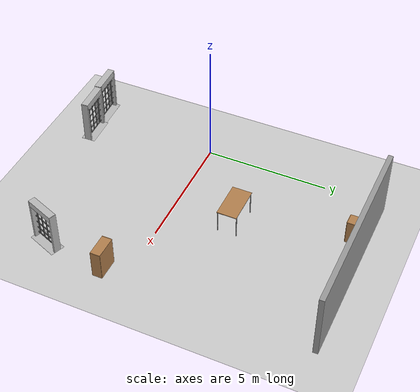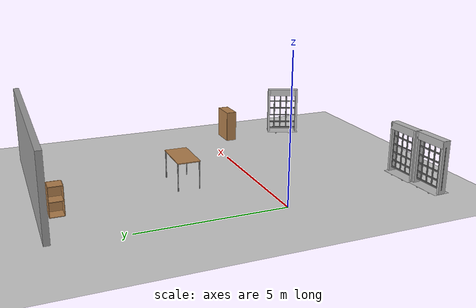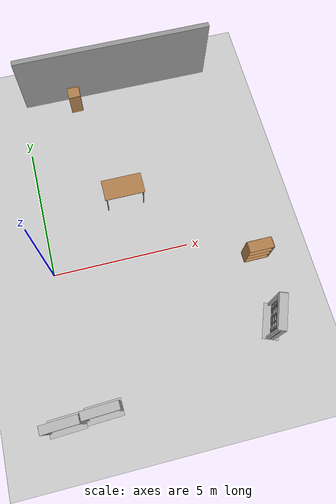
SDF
<sdf version="1.6">
 <world name="default">
  <light name="sun" type="directional">
   <pose>0 0 10 0 -0 0</pose>
   <diffuse>0.8 0.8 0.8 1</diffuse>
   <specular>0.2 0.2 0.2 1</specular>
   <attenuation>
    <range>1000</range>
    <constant>0.9</constant>
    <linear>0.01</linear>
    <quadratic>0.001</quadratic>
   </attenuation>
   <direction>-0.5 0.1 -0.9</direction>
  </light>
  <model name="ground_plane">
   <static>1</static>
   <link name="link">
    <collision name="collision">
     <geometry><plane><normal>0 0 1</normal><size>100 100</size></plane></geometry>
     <surface><friction><ode><mu>100</mu><mu2>50</mu2></ode></friction></surface>
    </collision>
    <visual name="visual">
     <cast_shadows>0</cast_shadows>
     <geometry><plane><normal>0 0 1</normal><size>100 100</size></plane></geometry>
     <material>
      <script><uri>file://media/materials/scripts/gazebo.material</uri><name>Gazebo/Grey</name></script>
     </material>
    </visual>
   </link>
  </model>
  <gravity>0 0 -9.8</gravity>
  <magnetic_field>6e-06 2.3e-05 -4.2e-05</magnetic_field>
  <atmosphere type="adiabatic"/>
  <physics name="default_physics" default="0" type="ode">
   <max_step_size>0.001</max_step_size>
   <real_time_factor>1</real_time_factor>
   <real_time_update_rate>1000</real_time_update_rate>
  </physics>
  <scene><ambient>0.4 0.4 0.4 1</ambient><background>0.7 0.7 0.7 1</background><shadows>1</shadows></scene>
  <spherical_coordinates>
   <surface_model>EARTH_WGS84</surface_model>
   <latitude_deg>0</latitude_deg>
   <longitude_deg>0</longitude_deg>
   <elevation>0</elevation>
   <heading_deg>0</heading_deg>
  </spherical_coordinates>
  <model name="frc2016_portcullis">
   <link name="base">
    <inertial>
     <mass>50</mass>
     <pose>0 0 1.02941 0 -0 0</pose>
     <inertia><ixx>3.81711</ixx><ixy>0</ixy><ixz>0</ixz><iyy>4.87698</iyy><iyz>0</iyz><izz>1.6283</izz></inertia>
    </inertial>
    <visual name="platform">
     <pose>0 0 0.07284 0 -0 0</pose>
     <geometry><box><size>1.27 0.5842 0.003175</size></box></geometry>
    </visual>
    <collision name="platform">
     <pose>0 0 0.07284 0 -0 0</pose>
     <geometry><box><size>1.27 0.5842 0.003175</size></box></geometry>
    </collision>
    <visual name="left_column">
     <pose>0.59284 0 0.99042 0 -0 0</pose>
     <geometry><box><size>0.08375 0.28575 1.83198</size></box></geometry>
    </visual>
    <collision name="left_column">
     <pose>0.59284 0 0.99042 0 -0 0</pose>
     <geometry><box><size>0.08375 0.28575 1.83198</size></box></geometry>
    </collision>
    <visual name="right_column">
     <pose>-0.57759 0 0.99042 0 -0 0</pose>
     <geometry><box><size>0.08375 0.28575 1.83198</size></box></geometry>
    </visual>
    <collision name="right_column">
     <pose>-0.57759 0 0.99042 0 -0 0</pose>
     <geometry><box><size>0.08375 0.28575 1.83198</size></box></geometry>
    </collision>
    <visual name="top">
     <pose>-0.00034 0 1.77722 0 -0 0</pose>
     <geometry><box><size>1.22962 0.28575 0.26657</size></box></geometry>
    </visual>
    <collision name="top">
     <pose>-0.00034 0 1.77722 0 -0 0</pose>
     <geometry><box><size>1.22962 0.28575 0.26657</size></box></geometry>
    </collision>
    <visual name="castor1">
     <pose>-0.45651 -0.16234 0.03272 0 -0 0</pose>
     <geometry><sphere><radius>0.03272</radius></sphere></geometry>
    </visual>
    <collision name="castor1">
     <pose>-0.45651 -0.16234 0.03272 0 -0 0</pose>
     <geometry><sphere><radius>0.03272</radius></sphere></geometry>
    </collision>
    <visual name="castor2">
     <pose>-0.27883 0.21836 0.03272 0 -0 0</pose>
     <geometry><sphere><radius>0.03272</radius></sphere></geometry>
    </visual>
    <collision name="castor2">
     <pose>-0.27883 0.21836 0.03272 0 -0 0</pose>
     <geometry><sphere><radius>0.03272</radius></sphere></geometry>
    </collision>
    <visual name="castor3">
     <pose>0.28083 0.21906 0.03272 0 -0 0</pose>
     <geometry><sphere><radius>0.03272</radius></sphere></geometry>
    </visual>
    <collision name="castor3">
     <pose>0.28083 0.21906 0.03272 0 -0 0</pose>
     <geometry><sphere><radius>0.03272</radius></sphere></geometry>
    </collision>
    <visual name="castor4">
     <pose>0.45871 -0.16186 0.03272 0 -0 0</pose>
     <geometry><sphere><radius>0.03272</radius></sphere></geometry>
    </visual>
    <collision name="castor4">
     <pose>0.45871 -0.16186 0.03272 0 -0 0</pose>
     <geometry><sphere><radius>0.03272</radius></sphere></geometry>
    </collision>
   </link>
   <link name="gate">
    <pose>-0.0287 0.02885 0.93327 0 -0 0</pose>
    <inertial>
     <mass>2</mass>
     <inertia><ixx>3.81711</ixx><ixy>0</ixy><ixz>0</ixz><iyy>4.87698</iyy><iyz>0</iyz><izz>1.6283</izz></inertia>
    </inertial>
    <collision name="collision"><geometry><box><size>1.1938 0.02496 1.45732</size></box></geometry></collision>
    <visual name="horz_1">
     <pose>0 0 -0.70326 0 -0 0</pose>
     <geometry><box><size>1.1938 0.02496 0.0508</size></box></geometry>
     <material><ambient>0.4 0.4 0.4 1</ambient><diffuse>0.4 0.4 0.4 1</diffuse></material>
    </visual>
    <visual name="horz_2">
     <pose>0 0 -0.44926 0 -0 0</pose>
     <geometry><box><size>1.1938 0.02496 0.0508</size></box></geometry>
     <material><ambient>0.4 0.4 0.4 1</ambient><diffuse>0.4 0.4 0.4 1</diffuse></material>
    </visual>
    <visual name="horz_3">
     <pose>0 0 -0.14517 0 -0 0</pose>
     <geometry><box><size>1.1938 0.02496 0.0508</size></box></geometry>
     <material><ambient>0.4 0.4 0.4 1</ambient><diffuse>0.4 0.4 0.4 1</diffuse></material>
    </visual>
    <visual name="horz_4">
     <pose>0 0 0.16034 0 -0 0</pose>
     <geometry><box><size>1.1938 0.02496 0.0508</size></box></geometry>
     <material><ambient>0.4 0.4 0.4 1</ambient><diffuse>0.4 0.4 0.4 1</diffuse></material>
    </visual>
    <visual name="horz_5">
     <pose>0 0 0.46514 0 -0 0</pose>
     <geometry><box><size>1.1938 0.02496 0.0508</size></box></geometry>
     <material><ambient>0.4 0.4 0.4 1</ambient><diffuse>0.4 0.4 0.4 1</diffuse></material>
    </visual>
    <visual name="horz_6">
     <pose>0 0 0.72994 0 -0 0</pose>
     <geometry><box><size>1.1938 0.02496 0.0508</size></box></geometry>
     <material><ambient>0.4 0.4 0.4 1</ambient><diffuse>0.4 0.4 0.4 1</diffuse></material>
    </visual>
    <visual name="vert_1">
     <pose>-0.58448 0 0 0 -0 0</pose>
     <geometry><box><size>0.02495 0.02496 1.45732</size></box></geometry>
     <material><ambient>0.4 0.4 0.4 1</ambient><diffuse>0.4 0.4 0.4 1</diffuse></material>
    </visual>
    <visual name="vert_2">
     <pose>-0.38128 0 0 0 -0 0</pose>
     <geometry><box><size>0.0508 0.02496 1.45732</size></box></geometry>
     <material><ambient>0.4 0.4 0.4 1</ambient><diffuse>0.4 0.4 0.4 1</diffuse></material>
    </visual>
    <visual name="vert_3">
     <pose>-0.12728 0 0 0 -0 0</pose>
     <geometry><box><size>0.0508 0.02496 1.45732</size></box></geometry>
     <material><ambient>0.4 0.4 0.4 1</ambient><diffuse>0.4 0.4 0.4 1</diffuse></material>
    </visual>
    <visual name="vert_4">
     <pose>0.12672 0 0 0 -0 0</pose>
     <geometry><box><size>0.0508 0.02496 1.45732</size></box></geometry>
     <material><ambient>0.4 0.4 0.4 1</ambient><diffuse>0.4 0.4 0.4 1</diffuse></material>
    </visual>
    <visual name="vert_5">
     <pose>0.38072 0 0 0 -0 0</pose>
     <geometry><box><size>0.0508 0.02496 1.45732</size></box></geometry>
     <material><ambient>0.4 0.4 0.4 1</ambient><diffuse>0.4 0.4 0.4 1</diffuse></material>
    </visual>
    <visual name="vert_6">
     <pose>0.58392 0 0 0 -0 0</pose>
     <geometry><box><size>0.02495 0.02496 1.45732</size></box></geometry>
     <material><ambient>0.4 0.4 0.4 1</ambient><diffuse>0.4 0.4 0.4 1</diffuse></material>
    </visual>
   </link>
   <joint name="joint" type="prismatic">
    <parent>base</parent>
    <child>gate</child>
    <axis>
     <xyz>0 0 1</xyz>
     <limit><lower>0</lower><upper>1</upper></limit>
     <use_parent_model_frame>0</use_parent_model_frame>
     <dynamics><spring_reference>0</spring_reference><spring_stiffness>0</spring_stiffness></dynamics>
    </axis>
   </joint>
   <pose>-0.461773 -5.08463 0 -1e-06 -1e-06 0.039389</pose>
  </model>
  <model name="frc2016_portcullis_clone">
   <link name="base">
    <inertial>
     <mass>50</mass>
     <pose>0 0 1.02941 0 -0 0</pose>
     <inertia><ixx>3.81711</ixx><ixy>0</ixy><ixz>0</ixz><iyy>4.87698</iyy><iyz>0</iyz><izz>1.6283</izz></inertia>
    </inertial>
    <visual name="platform">
     <pose>0 0 0.07284 0 -0 0</pose>
     <geometry><box><size>1.27 0.5842 0.003175</size></box></geometry>
    </visual>
    <collision name="platform">
     <pose>0 0 0.07284 0 -0 0</pose>
     <geometry><box><size>1.27 0.5842 0.003175</size></box></geometry>
    </collision>
    <visual name="left_column">
     <pose>0.59284 0 0.99042 0 -0 0</pose>
     <geometry><box><size>0.08375 0.28575 1.83198</size></box></geometry>
    </visual>
    <collision name="left_column">
     <pose>0.59284 0 0.99042 0 -0 0</pose>
     <geometry><box><size>0.08375 0.28575 1.83198</size></box></geometry>
    </collision>
    <visual name="right_column">
     <pose>-0.57759 0 0.99042 0 -0 0</pose>
     <geometry><box><size>0.08375 0.28575 1.83198</size></box></geometry>
    </visual>
    <collision name="right_column">
     <pose>-0.57759 0 0.99042 0 -0 0</pose>
     <geometry><box><size>0.08375 0.28575 1.83198</size></box></geometry>
    </collision>
    <visual name="top">
     <pose>-0.00034 0 1.77722 0 -0 0</pose>
     <geometry><box><size>1.22962 0.28575 0.26657</size></box></geometry>
    </visual>
    <collision name="top">
     <pose>-0.00034 0 1.77722 0 -0 0</pose>
     <geometry><box><size>1.22962 0.28575 0.26657</size></box></geometry>
    </collision>
    <visual name="castor1">
     <pose>-0.45651 -0.16234 0.03272 0 -0 0</pose>
     <geometry><sphere><radius>0.03272</radius></sphere></geometry>
    </visual>
    <collision name="castor1">
     <pose>-0.45651 -0.16234 0.03272 0 -0 0</pose>
     <geometry><sphere><radius>0.03272</radius></sphere></geometry>
    </collision>
    <visual name="castor2">
     <pose>-0.27883 0.21836 0.03272 0 -0 0</pose>
     <geometry><sphere><radius>0.03272</radius></sphere></geometry>
    </visual>
    <collision name="castor2">
     <pose>-0.27883 0.21836 0.03272 0 -0 0</pose>
     <geometry><sphere><radius>0.03272</radius></sphere></geometry>
    </collision>
    <visual name="castor3">
     <pose>0.28083 0.21906 0.03272 0 -0 0</pose>
     <geometry><sphere><radius>0.03272</radius></sphere></geometry>
    </visual>
    <collision name="castor3">
     <pose>0.28083 0.21906 0.03272 0 -0 0</pose>
     <geometry><sphere><radius>0.03272</radius></sphere></geometry>
    </collision>
    <visual name="castor4">
     <pose>0.45871 -0.16186 0.03272 0 -0 0</pose>
     <geometry><sphere><radius>0.03272</radius></sphere></geometry>
    </visual>
    <collision name="castor4">
     <pose>0.45871 -0.16186 0.03272 0 -0 0</pose>
     <geometry><sphere><radius>0.03272</radius></sphere></geometry>
    </collision>
   </link>
   <link name="gate">
    <pose>-0.0287 0.02885 0.93327 0 -0 0</pose>
    <inertial>
     <mass>2</mass>
     <inertia><ixx>3.81711</ixx><ixy>0</ixy><ixz>0</ixz><iyy>4.87698</iyy><iyz>0</iyz><izz>1.6283</izz></inertia>
    </inertial>
    <collision name="collision"><geometry><box><size>1.1938 0.02496 1.45732</size></box></geometry></collision>
    <visual name="horz_1">
     <pose>0 0 -0.70326 0 -0 0</pose>
     <geometry><box><size>1.1938 0.02496 0.0508</size></box></geometry>
     <material><ambient>0.4 0.4 0.4 1</ambient><diffuse>0.4 0.4 0.4 1</diffuse></material>
    </visual>
    <visual name="horz_2">
     <pose>0 0 -0.44926 0 -0 0</pose>
     <geometry><box><size>1.1938 0.02496 0.0508</size></box></geometry>
     <material><ambient>0.4 0.4 0.4 1</ambient><diffuse>0.4 0.4 0.4 1</diffuse></material>
    </visual>
    <visual name="horz_3">
     <pose>0 0 -0.14517 0 -0 0</pose>
     <geometry><box><size>1.1938 0.02496 0.0508</size></box></geometry>
     <material><ambient>0.4 0.4 0.4 1</ambient><diffuse>0.4 0.4 0.4 1</diffuse></material>
    </visual>
    <visual name="horz_4">
     <pose>0 0 0.16034 0 -0 0</pose>
     <geometry><box><size>1.1938 0.02496 0.0508</size></box></geometry>
     <material><ambient>0.4 0.4 0.4 1</ambient><diffuse>0.4 0.4 0.4 1</diffuse></material>
    </visual>
    <visual name="horz_5">
     <pose>0 0 0.46514 0 -0 0</pose>
     <geometry><box><size>1.1938 0.02496 0.0508</size></box></geometry>
     <material><ambient>0.4 0.4 0.4 1</ambient><diffuse>0.4 0.4 0.4 1</diffuse></material>
    </visual>
    <visual name="horz_6">
     <pose>0 0 0.72994 0 -0 0</pose>
     <geometry><box><size>1.1938 0.02496 0.0508</size></box></geometry>
     <material><ambient>0.4 0.4 0.4 1</ambient><diffuse>0.4 0.4 0.4 1</diffuse></material>
    </visual>
    <visual name="vert_1">
     <pose>-0.58448 0 0 0 -0 0</pose>
     <geometry><box><size>0.02495 0.02496 1.45732</size></box></geometry>
     <material><ambient>0.4 0.4 0.4 1</ambient><diffuse>0.4 0.4 0.4 1</diffuse></material>
    </visual>
    <visual name="vert_2">
     <pose>-0.38128 0 0 0 -0 0</pose>
     <geometry><box><size>0.0508 0.02496 1.45732</size></box></geometry>
     <material><ambient>0.4 0.4 0.4 1</ambient><diffuse>0.4 0.4 0.4 1</diffuse></material>
    </visual>
    <visual name="vert_3">
     <pose>-0.12728 0 0 0 -0 0</pose>
     <geometry><box><size>0.0508 0.02496 1.45732</size></box></geometry>
     <material><ambient>0.4 0.4 0.4 1</ambient><diffuse>0.4 0.4 0.4 1</diffuse></material>
    </visual>
    <visual name="vert_4">
     <pose>0.12672 0 0 0 -0 0</pose>
     <geometry><box><size>0.0508 0.02496 1.45732</size></box></geometry>
     <material><ambient>0.4 0.4 0.4 1</ambient><diffuse>0.4 0.4 0.4 1</diffuse></material>
    </visual>
    <visual name="vert_5">
     <pose>0.38072 0 0 0 -0 0</pose>
     <geometry><box><size>0.0508 0.02496 1.45732</size></box></geometry>
     <material><ambient>0.4 0.4 0.4 1</ambient><diffuse>0.4 0.4 0.4 1</diffuse></material>
    </visual>
    <visual name="vert_6">
     <pose>0.58392 0 0 0 -0 0</pose>
     <geometry><box><size>0.02495 0.02496 1.45732</size></box></geometry>
     <material><ambient>0.4 0.4 0.4 1</ambient><diffuse>0.4 0.4 0.4 1</diffuse></material>
    </visual>
   </link>
   <joint name="joint" type="prismatic">
    <parent>base</parent>
    <child>gate</child>
    <axis>
     <xyz>0 0 1</xyz>
     <limit><lower>0</lower><upper>1</upper></limit>
     <use_parent_model_frame>0</use_parent_model_frame>
     <dynamics><spring_reference>0</spring_reference><spring_stiffness>0</spring_stiffness></dynamics>
    </axis>
   </joint>
   <pose>0.805179 -4.98224 1e-06 0 2e-06 0.039394</pose>
  </model>
  <model name="frc2016_portcullis_clone_clone">
   <link name="base">
    <inertial>
     <mass>50</mass>
     <pose>0 0 1.02941 0 -0 0</pose>
     <inertia><ixx>3.81711</ixx><ixy>0</ixy><ixz>0</ixz><iyy>4.87698</iyy><iyz>0</iyz><izz>1.6283</izz></inertia>
    </inertial>
    <visual name="platform">
     <pose>0 0 0.07284 0 -0 0</pose>
     <geometry><box><size>1.27 0.5842 0.003175</size></box></geometry>
    </visual>
    <collision name="platform">
     <pose>0 0 0.07284 0 -0 0</pose>
     <geometry><box><size>1.27 0.5842 0.003175</size></box></geometry>
    </collision>
    <visual name="left_column">
     <pose>0.59284 0 0.99042 0 -0 0</pose>
     <geometry><box><size>0.08375 0.28575 1.83198</size></box></geometry>
    </visual>
    <collision name="left_column">
     <pose>0.59284 0 0.99042 0 -0 0</pose>
     <geometry><box><size>0.08375 0.28575 1.83198</size></box></geometry>
    </collision>
    <visual name="right_column">
     <pose>-0.57759 0 0.99042 0 -0 0</pose>
     <geometry><box><size>0.08375 0.28575 1.83198</size></box></geometry>
    </visual>
    <collision name="right_column">
     <pose>-0.57759 0 0.99042 0 -0 0</pose>
     <geometry><box><size>0.08375 0.28575 1.83198</size></box></geometry>
    </collision>
    <visual name="top">
     <pose>-0.00034 0 1.77722 0 -0 0</pose>
     <geometry><box><size>1.22962 0.28575 0.26657</size></box></geometry>
    </visual>
    <collision name="top">
     <pose>-0.00034 0 1.77722 0 -0 0</pose>
     <geometry><box><size>1.22962 0.28575 0.26657</size></box></geometry>
    </collision>
    <visual name="castor1">
     <pose>-0.45651 -0.16234 0.03272 0 -0 0</pose>
     <geometry><sphere><radius>0.03272</radius></sphere></geometry>
    </visual>
    <collision name="castor1">
     <pose>-0.45651 -0.16234 0.03272 0 -0 0</pose>
     <geometry><sphere><radius>0.03272</radius></sphere></geometry>
    </collision>
    <visual name="castor2">
     <pose>-0.27883 0.21836 0.03272 0 -0 0</pose>
     <geometry><sphere><radius>0.03272</radius></sphere></geometry>
    </visual>
    <collision name="castor2">
     <pose>-0.27883 0.21836 0.03272 0 -0 0</pose>
     <geometry><sphere><radius>0.03272</radius></sphere></geometry>
    </collision>
    <visual name="castor3">
     <pose>0.28083 0.21906 0.03272 0 -0 0</pose>
     <geometry><sphere><radius>0.03272</radius></sphere></geometry>
    </visual>
    <collision name="castor3">
     <pose>0.28083 0.21906 0.03272 0 -0 0</pose>
     <geometry><sphere><radius>0.03272</radius></sphere></geometry>
    </collision>
    <visual name="castor4">
     <pose>0.45871 -0.16186 0.03272 0 -0 0</pose>
     <geometry><sphere><radius>0.03272</radius></sphere></geometry>
    </visual>
    <collision name="castor4">
     <pose>0.45871 -0.16186 0.03272 0 -0 0</pose>
     <geometry><sphere><radius>0.03272</radius></sphere></geometry>
    </collision>
   </link>
   <link name="gate">
    <pose>-0.0287 0.02885 0.93327 0 -0 0</pose>
    <inertial>
     <mass>2</mass>
     <inertia><ixx>3.81711</ixx><ixy>0</ixy><ixz>0</ixz><iyy>4.87698</iyy><iyz>0</iyz><izz>1.6283</izz></inertia>
    </inertial>
    <collision name="collision"><geometry><box><size>1.1938 0.02496 1.45732</size></box></geometry></collision>
    <visual name="horz_1">
     <pose>0 0 -0.70326 0 -0 0</pose>
     <geometry><box><size>1.1938 0.02496 0.0508</size></box></geometry>
     <material><ambient>0.4 0.4 0.4 1</ambient><diffuse>0.4 0.4 0.4 1</diffuse></material>
    </visual>
    <visual name="horz_2">
     <pose>0 0 -0.44926 0 -0 0</pose>
     <geometry><box><size>1.1938 0.02496 0.0508</size></box></geometry>
     <material><ambient>0.4 0.4 0.4 1</ambient><diffuse>0.4 0.4 0.4 1</diffuse></material>
    </visual>
    <visual name="horz_3">
     <pose>0 0 -0.14517 0 -0 0</pose>
     <geometry><box><size>1.1938 0.02496 0.0508</size></box></geometry>
     <material><ambient>0.4 0.4 0.4 1</ambient><diffuse>0.4 0.4 0.4 1</diffuse></material>
    </visual>
    <visual name="horz_4">
     <pose>0 0 0.16034 0 -0 0</pose>
     <geometry><box><size>1.1938 0.02496 0.0508</size></box></geometry>
     <material><ambient>0.4 0.4 0.4 1</ambient><diffuse>0.4 0.4 0.4 1</diffuse></material>
    </visual>
    <visual name="horz_5">
     <pose>0 0 0.46514 0 -0 0</pose>
     <geometry><box><size>1.1938 0.02496 0.0508</size></box></geometry>
     <material><ambient>0.4 0.4 0.4 1</ambient><diffuse>0.4 0.4 0.4 1</diffuse></material>
    </visual>
    <visual name="horz_6">
     <pose>0 0 0.72994 0 -0 0</pose>
     <geometry><box><size>1.1938 0.02496 0.0508</size></box></geometry>
     <material><ambient>0.4 0.4 0.4 1</ambient><diffuse>0.4 0.4 0.4 1</diffuse></material>
    </visual>
    <visual name="vert_1">
     <pose>-0.58448 0 0 0 -0 0</pose>
     <geometry><box><size>0.02495 0.02496 1.45732</size></box></geometry>
     <material><ambient>0.4 0.4 0.4 1</ambient><diffuse>0.4 0.4 0.4 1</diffuse></material>
    </visual>
    <visual name="vert_2">
     <pose>-0.38128 0 0 0 -0 0</pose>
     <geometry><box><size>0.0508 0.02496 1.45732</size></box></geometry>
     <material><ambient>0.4 0.4 0.4 1</ambient><diffuse>0.4 0.4 0.4 1</diffuse></material>
    </visual>
    <visual name="vert_3">
     <pose>-0.12728 0 0 0 -0 0</pose>
     <geometry><box><size>0.0508 0.02496 1.45732</size></box></geometry>
     <material><ambient>0.4 0.4 0.4 1</ambient><diffuse>0.4 0.4 0.4 1</diffuse></material>
    </visual>
    <visual name="vert_4">
     <pose>0.12672 0 0 0 -0 0</pose>
     <geometry><box><size>0.0508 0.02496 1.45732</size></box></geometry>
     <material><ambient>0.4 0.4 0.4 1</ambient><diffuse>0.4 0.4 0.4 1</diffuse></material>
    </visual>
    <visual name="vert_5">
     <pose>0.38072 0 0 0 -0 0</pose>
     <geometry><box><size>0.0508 0.02496 1.45732</size></box></geometry>
     <material><ambient>0.4 0.4 0.4 1</ambient><diffuse>0.4 0.4 0.4 1</diffuse></material>
    </visual>
    <visual name="vert_6">
     <pose>0.58392 0 0 0 -0 0</pose>
     <geometry><box><size>0.02495 0.02496 1.45732</size></box></geometry>
     <material><ambient>0.4 0.4 0.4 1</ambient><diffuse>0.4 0.4 0.4 1</diffuse></material>
    </visual>
   </link>
   <joint name="joint" type="prismatic">
    <parent>base</parent>
    <child>gate</child>
    <axis>
     <xyz>0 0 1</xyz>
     <limit><lower>0</lower><upper>1</upper></limit>
     <use_parent_model_frame>0</use_parent_model_frame>
     <dynamics><spring_reference>0</spring_reference><spring_stiffness>0</spring_stiffness></dynamics>
    </axis>
   </joint>
   <pose>7.13675 -3.44878 0 -1e-06 0 1.20305</pose>
  </model>
  <model name="table">
   <static>1</static>
   <link name="link">
    <collision name="surface">
     <pose>0 0 1 0 -0 0</pose>
     <geometry><box><size>1.5 0.8 0.03</size></box></geometry>
     <surface><friction><ode><mu>0.6</mu><mu2>0.6</mu2></ode></friction></surface>
    </collision>
    <visual name="visual1">
     <pose>0 0 1 0 -0 0</pose>
     <geometry><box><size>1.5 0.8 0.03</size></box></geometry>
     <material>
      <script><uri>file://media/materials/scripts/gazebo.material</uri><name>Gazebo/Wood</name></script>
     </material>
    </visual>
    <collision name="front_left_leg">
     <pose>0.68 0.38 0.5 0 -0 0</pose>
     <geometry><cylinder><radius>0.02</radius><length>1</length></cylinder></geometry>
    </collision>
    <visual name="front_left_leg">
     <pose>0.68 0.38 0.5 0 -0 0</pose>
     <geometry><cylinder><radius>0.02</radius><length>1</length></cylinder></geometry>
     <material>
      <script><uri>file://media/materials/scripts/gazebo.material</uri><name>Gazebo/Grey</name></script>
     </material>
    </visual>
    <collision name="front_right_leg">
     <pose>0.68 -0.38 0.5 0 -0 0</pose>
     <geometry><cylinder><radius>0.02</radius><length>1</length></cylinder></geometry>
    </collision>
    <visual name="front_right_leg">
     <pose>0.68 -0.38 0.5 0 -0 0</pose>
     <geometry><cylinder><radius>0.02</radius><length>1</length></cylinder></geometry>
     <material>
      <script><uri>file://media/materials/scripts/gazebo.material</uri><name>Gazebo/Grey</name></script>
     </material>
    </visual>
    <collision name="back_right_leg">
     <pose>-0.68 -0.38 0.5 0 -0 0</pose>
     <geometry><cylinder><radius>0.02</radius><length>1</length></cylinder></geometry>
    </collision>
    <visual name="back_right_leg">
     <pose>-0.68 -0.38 0.5 0 -0 0</pose>
     <geometry><cylinder><radius>0.02</radius><length>1</length></cylinder></geometry>
     <material>
      <script><uri>file://media/materials/scripts/gazebo.material</uri><name>Gazebo/Grey</name></script>
     </material>
    </visual>
    <collision name="back_left_leg">
     <pose>-0.68 0.38 0.5 0 -0 0</pose>
     <geometry><cylinder><radius>0.02</radius><length>1</length></cylinder></geometry>
    </collision>
    <visual name="back_left_leg">
     <pose>-0.68 0.38 0.5 0 -0 0</pose>
     <geometry><cylinder><radius>0.02</radius><length>1</length></cylinder></geometry>
     <material>
      <script><uri>file://media/materials/scripts/gazebo.material</uri><name>Gazebo/Grey</name></script>
     </material>
    </visual>
   </link>
   <pose>3.1618 2.44114 0 0 -0 0</pose>
  </model>
  <model name="grey_wall">
   <static>1</static>
   <link name="link">
    <pose>0 0 1.4 0 -0 0</pose>
    <collision name="collision"><geometry><box><size>7.5 0.2 2.8</size></box></geometry></collision>
    <visual name="visual">
     <cast_shadows>0</cast_shadows>
     <geometry><box><size>7.5 0.2 2.8</size></box></geometry>
     <material>
      <script>
       <uri>model://grey_wall/materials/scripts</uri>
       <uri>model://grey_wall/materials/textures</uri>
       <name>vrc/grey_wall</name>
      </script>
     </material>
    </visual>
   </link>
   <pose>3.91987 7.39129 0 0 -0 0</pose>
  </model>
  <model name="cabinet">
   <static>1</static>
   <link name="cabinet_bottom_plate">
    <inertial>
     <pose>0 0 -1 0 -0 0</pose>
     <inertia><ixx>2.05</ixx><ixy>0</ixy><ixz>0</ixz><iyy>2.05</iyy><iyz>0</iyz><izz>2.05</izz></inertia>
     <mass>25</mass>
    </inertial>
    <collision name="cabinet_bottom_plate_geom">
     <pose>0 0 0.01 0 -0 0</pose>
     <geometry><box><size>0.45 0.45 0.02</size></box></geometry>
    </collision>
    <visual name="cabinet_bottom_plate_geom_visual">
     <pose>0 0 0.01 0 -0 0</pose>
     <geometry><box><size>0.45 0.45 0.02</size></box></geometry>
     <material>
      <script><uri>file://media/materials/scripts/gazebo.material</uri><name>Gazebo/Wood</name></script>
     </material>
    </visual>
    <collision name="cabinet_bottom_plate_geom_cabinet_back_plate">
     <pose>0.235 0 0.51 0 -0 0</pose>
     <geometry><box><size>0.02 0.45 1.02</size></box></geometry>
    </collision>
    <visual name="cabinet_bottom_plate_geom_cabinet_back_plate_visual">
     <pose>0.235 0 0.51 0 -0 0</pose>
     <geometry><box><size>0.02 0.45 1.02</size></box></geometry>
     <material>
      <script><uri>file://media/materials/scripts/gazebo.material</uri><name>Gazebo/Wood</name></script>
     </material>
    </visual>
    <collision name="cabinet_bottom_plate_geom_cabinet_left_plate">
     <pose>0 0.235 0.51 0 -0 0</pose>
     <geometry><box><size>0.45 0.02 1.02</size></box></geometry>
    </collision>
    <visual name="cabinet_bottom_plate_geom_cabinet_left_plate_visual">
     <pose>0 0.235 0.51 0 -0 0</pose>
     <geometry><box><size>0.45 0.02 1.02</size></box></geometry>
     <material>
      <script><uri>file://media/materials/scripts/gazebo.material</uri><name>Gazebo/Wood</name></script>
     </material>
    </visual>
    <collision name="cabinet_bottom_plate_geom_cabinet_middle_plate">
     <pose>0 0 0.51 0 -0 0</pose>
     <geometry><box><size>0.45 0.45 0.02</size></box></geometry>
    </collision>
    <visual name="cabinet_bottom_plate_geom_cabinet_middle_plate_visual">
     <pose>0 0 0.51 0 -0 0</pose>
     <geometry><box><size>0.45 0.45 0.02</size></box></geometry>
     <material>
      <script><uri>file://media/materials/scripts/gazebo.material</uri><name>Gazebo/Wood</name></script>
     </material>
    </visual>
    <collision name="cabinet_bottom_plate_geom_cabinet_right_plate">
     <pose>0 -0.235 0.51 0 -0 0</pose>
     <geometry><box><size>0.45 0.02 1.02</size></box></geometry>
    </collision>
    <visual name="cabinet_bottom_plate_geom_cabinet_right_plate_visual">
     <pose>0 -0.235 0.51 0 -0 0</pose>
     <geometry><box><size>0.45 0.02 1.02</size></box></geometry>
     <material>
      <script><uri>file://media/materials/scripts/gazebo.material</uri><name>Gazebo/Wood</name></script>
     </material>
    </visual>
    <collision name="cabinet_bottom_plate_geom_cabinet_top_plate">
     <pose>0 0 1.01 0 -0 0</pose>
     <geometry><box><size>0.45 0.45 0.02</size></box></geometry>
    </collision>
    <visual name="cabinet_bottom_plate_geom_cabinet_top_plate_visual">
     <pose>0 0 1.01 0 -0 0</pose>
     <geometry><box><size>0.45 0.45 0.02</size></box></geometry>
     <material>
      <script><uri>file://media/materials/scripts/gazebo.material</uri><name>Gazebo/Wood</name></script>
     </material>
    </visual>
   </link>
   <pose>2.16002 6.86215 0 0 -0 0</pose>
  </model>
  <model name="bookshelf">
   <static>1</static>
   <link name="link">
    <inertial><mass>1</mass></inertial>
    <collision name="back">
     <pose>0 0.005 0.6 0 -0 0</pose>
     <geometry><box><size>0.9 0.01 1.2</size></box></geometry>
    </collision>
    <visual name="visual1">
     <pose>0 0.005 0.6 0 -0 0</pose>
     <geometry><box><size>0.9 0.01 1.2</size></box></geometry>
     <material>
      <script><uri>file://media/materials/scripts/gazebo.material</uri><name>Gazebo/Wood</name></script>
     </material>
    </visual>
    <collision name="left_side">
     <pose>0.45 -0.195 0.6 0 -0 0</pose>
     <geometry><box><size>0.02 0.4 1.2</size></box></geometry>
    </collision>
    <visual name="visual2">
     <pose>0.45 -0.195 0.6 0 -0 0</pose>
     <geometry><box><size>0.02 0.4 1.2</size></box></geometry>
     <material>
      <script><uri>file://media/materials/scripts/gazebo.material</uri><name>Gazebo/Wood</name></script>
     </material>
    </visual>
    <collision name="right_side">
     <pose>-0.45 -0.195 0.6 0 -0 0</pose>
     <geometry><box><size>0.02 0.4 1.2</size></box></geometry>
    </collision>
    <visual name="visual3">
     <pose>-0.45 -0.195 0.6 0 -0 0</pose>
     <geometry><box><size>0.02 0.4 1.2</size></box></geometry>
     <material>
      <script><uri>file://media/materials/scripts/gazebo.material</uri><name>Gazebo/Wood</name></script>
     </material>
    </visual>
    <collision name="bottom">
     <pose>0 -0.195 0.03 0 -0 0</pose>
     <geometry><box><size>0.88 0.4 0.06</size></box></geometry>
    </collision>
    <visual name="visual4">
     <pose>0 -0.195 0.03 0 -0 0</pose>
     <geometry><box><size>0.88 0.4 0.06</size></box></geometry>
     <material>
      <script><uri>file://media/materials/scripts/gazebo.material</uri><name>Gazebo/Wood</name></script>
     </material>
    </visual>
    <collision name="top">
     <pose>0 -0.195 1.19 0 -0 0</pose>
     <geometry><box><size>0.88 0.4 0.02</size></box></geometry>
    </collision>
    <visual name="visual5">
     <pose>0 -0.195 1.19 0 -0 0</pose>
     <geometry><box><size>0.88 0.4 0.02</size></box></geometry>
     <material>
      <script><uri>file://media/materials/scripts/gazebo.material</uri><name>Gazebo/Wood</name></script>
     </material>
    </visual>
    <collision name="low_shelf">
     <pose>0 -0.195 0.43 0 -0 0</pose>
     <geometry><box><size>0.88 0.4 0.02</size></box></geometry>
    </collision>
    <visual name="visual6">
     <pose>0 -0.195 0.43 0 -0 0</pose>
     <geometry><box><size>0.88 0.4 0.02</size></box></geometry>
     <material>
      <script><uri>file://media/materials/scripts/gazebo.material</uri><name>Gazebo/Wood</name></script>
     </material>
    </visual>
    <collision name="high_shelf">
     <pose>0 -0.195 0.8 0 -0 0</pose>
     <geometry><box><size>0.88 0.4 0.02</size></box></geometry>
    </collision>
    <visual name="visual7">
     <pose>0 -0.195 0.8 0 -0 0</pose>
     <geometry><box><size>0.88 0.4 0.02</size></box></geometry>
     <material>
      <script><uri>file://media/materials/scripts/gazebo.material</uri><name>Gazebo/Wood</name></script>
     </material>
    </visual>
   </link>
   <pose>7.33525 -0.756155 0 0 -0 0</pose>
  </model>
 </world>
</sdf>
